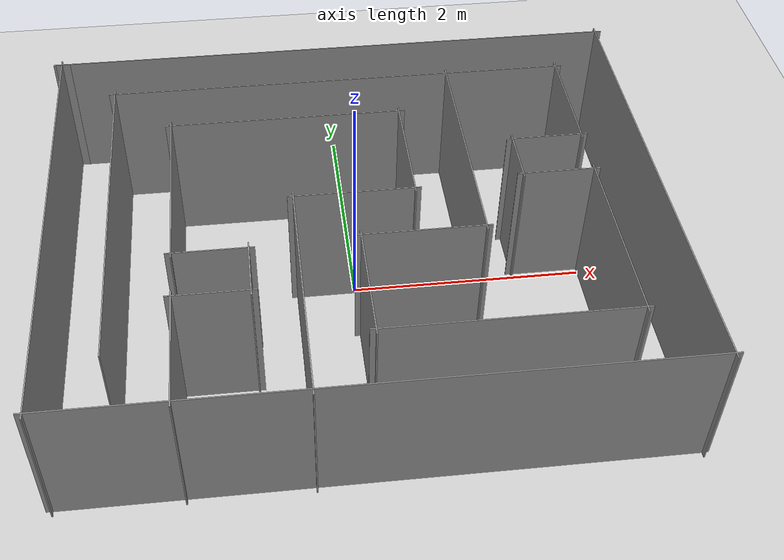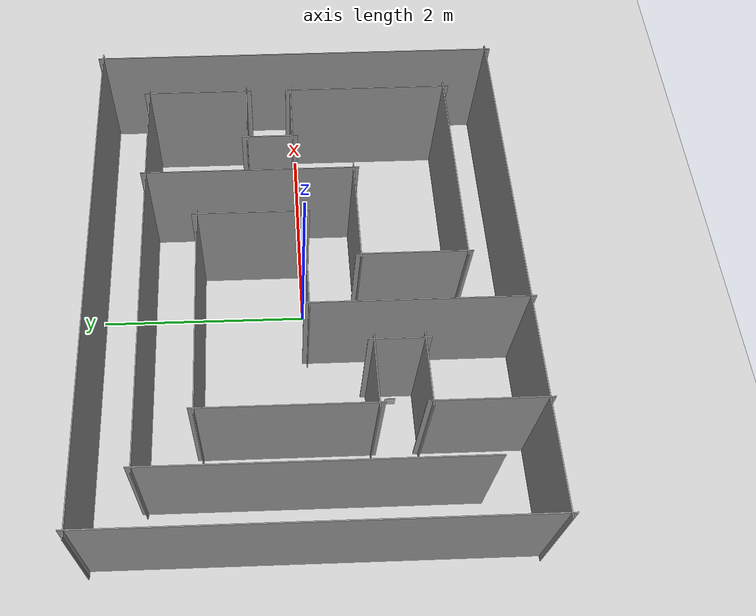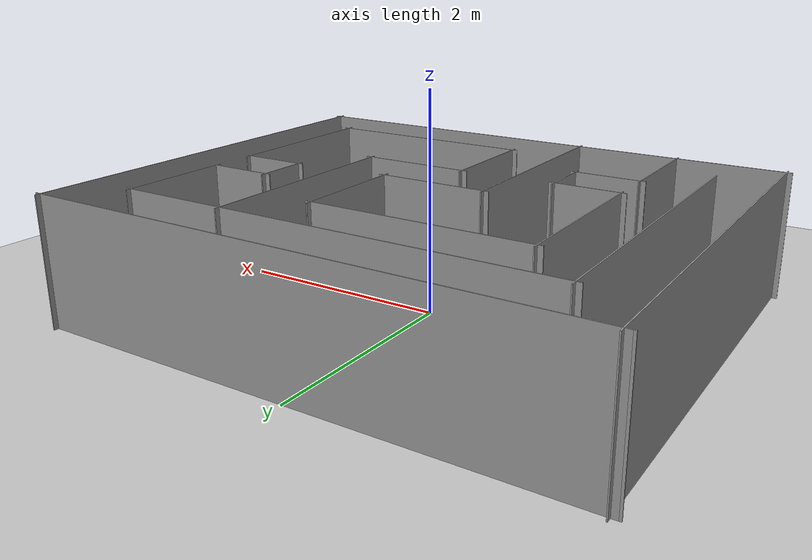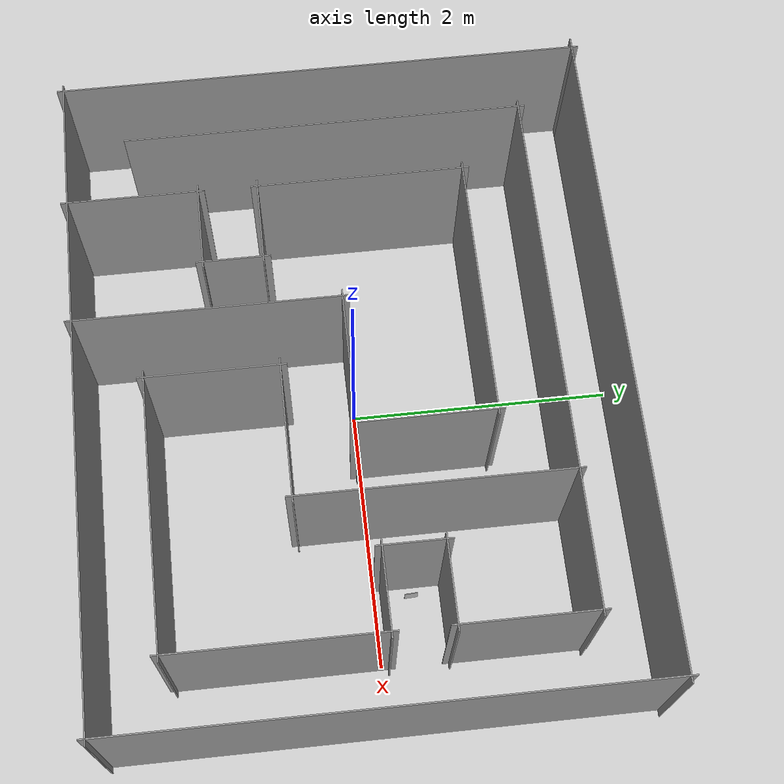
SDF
<sdf version="1.7">
 <world name="default">
  <light name="sun" type="directional">
   <pose>0 0 10 0 -0 0</pose>
   <diffuse>0.8 0.8 0.8 1</diffuse>
   <specular>0.2 0.2 0.2 1</specular>
   <attenuation>
    <range>1000</range>
    <constant>0.9</constant>
    <linear>0.01</linear>
    <quadratic>0.001</quadratic>
   </attenuation>
   <direction>-0.5 0.1 -0.9</direction>
   <spot><inner_angle>0</inner_angle><outer_angle>0</outer_angle><falloff>0</falloff></spot>
  </light>
  <model name="ground_plane">
   <static>1</static>
   <link name="link">
    <collision name="collision">
     <geometry><plane><normal>0 0 1</normal><size>100 100</size></plane></geometry>
     <surface>
      <contact><collide_bitmask>65535</collide_bitmask></contact>
      <friction><ode><mu>100</mu><mu2>50</mu2></ode></friction>
     </surface>
    </collision>
    <visual name="visual">
     <cast_shadows>0</cast_shadows>
     <geometry><plane><normal>0 0 1</normal><size>100 100</size></plane></geometry>
     <material>
      <script><uri>file://media/materials/scripts/gazebo.material</uri><name>Gazebo/Grey</name></script>
     </material>
    </visual>
   </link>
  </model>
  <gravity>0 0 -9.8</gravity>
  <magnetic_field>6e-06 2.3e-05 -4.2e-05</magnetic_field>
  <atmosphere type="adiabatic"/>
  <physics type="ode">
   <max_step_size>0.001</max_step_size>
   <real_time_factor>1</real_time_factor>
   <real_time_update_rate>1000</real_time_update_rate>
  </physics>
  <scene><ambient>0.4 0.4 0.4 1</ambient><background>0.7 0.7 0.7 1</background><shadows>1</shadows></scene>
  <spherical_coordinates>
   <surface_model>EARTH_WGS84</surface_model>
   <latitude_deg>0</latitude_deg>
   <longitude_deg>0</longitude_deg>
   <elevation>0</elevation>
   <heading_deg>0</heading_deg>
  </spherical_coordinates>
  <model name="competition_arena.world">
   <static>1</static>
   <link name="Wall_0">
    <collision name="Wall_0_Collision">
     <geometry><box><size>5.11 0.01 1.2</size></box></geometry>
     <pose>0 0 0.6 0 -0 0</pose>
    </collision>
    <visual name="Wall_0_Visual">
     <pose>0 0 0.6 0 -0 0</pose>
     <geometry><box><size>5.11 0.01 1.2</size></box></geometry>
     <material>
      <script><uri>file://media/materials/scripts/gazebo.material</uri><name>Gazebo/Grey</name></script>
      <ambient>1 1 1 1</ambient>
     </material>
     <meta><layer>0</layer></meta>
    </visual>
    <pose>0.01 1.9875 0 0 -0 0</pose>
   </link>
   <link name="Wall_13">
    <collision name="Wall_13_Collision">
     <geometry><box><size>1.085 0.01 1.2</size></box></geometry>
     <pose>0 0 0.6 0 -0 0</pose>
    </collision>
    <visual name="Wall_13_Visual">
     <pose>0 0 0.6 0 -0 0</pose>
     <geometry><box><size>1.085 0.01 1.2</size></box></geometry>
     <material>
      <script><uri>file://media/materials/scripts/gazebo.material</uri><name>Gazebo/Grey</name></script>
      <ambient>1 1 1 1</ambient>
     </material>
     <meta><layer>0</layer></meta>
    </visual>
    <pose>-1.49 -1.52 0 0 -0 1.5708</pose>
   </link>
   <link name="Wall_25">
    <collision name="Wall_25_Collision">
     <geometry><box><size>0.7 0.01 1.2</size></box></geometry>
     <pose>0 0 0.6 0 -0 0</pose>
    </collision>
    <visual name="Wall_25_Visual">
     <pose>0 0 0.6 0 -0 0</pose>
     <geometry><box><size>0.7 0.01 1.2</size></box></geometry>
     <material>
      <script><uri>file://media/materials/scripts/gazebo.material</uri><name>Gazebo/Grey</name></script>
      <ambient>1 1 1 1</ambient>
     </material>
     <meta><layer>0</layer></meta>
    </visual>
    <pose>-1.19 -1.0275 0 0 -0 0</pose>
   </link>
   <link name="Wall_27">
    <collision name="Wall_27_Collision">
     <geometry><box><size>3.1 0.01 1.2</size></box></geometry>
     <pose>0 0 0.6 0 -0 0</pose>
    </collision>
    <visual name="Wall_27_Visual">
     <pose>0 0 0.6 0 -0 0</pose>
     <geometry><box><size>3.1 0.01 1.2</size></box></geometry>
     <material>
      <script><uri>file://media/materials/scripts/gazebo.material</uri><name>Gazebo/Grey</name></script>
      <ambient>1 1 1 1</ambient>
     </material>
     <meta><layer>0</layer></meta>
    </visual>
    <pose>-1.99 -0.0125 0 0 -0 1.5708</pose>
   </link>
   <link name="Wall_29">
    <collision name="Wall_29_Collision">
     <geometry><box><size>0.56 0.01 1.2</size></box></geometry>
     <pose>0 0 0.6 0 -0 0</pose>
    </collision>
    <visual name="Wall_29_Visual">
     <pose>0 0 0.6 0 -0 0</pose>
     <geometry><box><size>0.56 0.01 1.2</size></box></geometry>
     <material>
      <script><uri>file://media/materials/scripts/gazebo.material</uri><name>Gazebo/Grey</name></script>
      <ambient>1 1 1 1</ambient>
     </material>
     <meta><layer>0</layer></meta>
    </visual>
    <pose>-0.89 -0.8025 0 0 -0 1.5708</pose>
   </link>
   <link name="Wall_3">
    <collision name="Wall_3_Collision">
     <geometry><box><size>4.1 0.01 1.2</size></box></geometry>
     <pose>0 0 0.6 0 -0 0</pose>
    </collision>
    <visual name="Wall_3_Visual">
     <pose>0 0 0.6 0 -0 0</pose>
     <geometry><box><size>4.1 0.01 1.2</size></box></geometry>
     <material>
      <script><uri>file://media/materials/scripts/gazebo.material</uri><name>Gazebo/Grey</name></script>
      <ambient>1 1 1 1</ambient>
     </material>
     <meta><layer>0</layer></meta>
    </visual>
    <pose>-2.49 -0.0125 0 0 -0 1.5708</pose>
   </link>
   <link name="Wall_30">
    <collision name="Wall_30_Collision">
     <geometry><box><size>0.7 0.01 1.2</size></box></geometry>
     <pose>0 0 0.6 0 -0 0</pose>
    </collision>
    <visual name="Wall_30_Visual">
     <pose>0 0 0.6 0 -0 0</pose>
     <geometry><box><size>0.7 0.01 1.2</size></box></geometry>
     <material>
      <script><uri>file://media/materials/scripts/gazebo.material</uri><name>Gazebo/Grey</name></script>
      <ambient>1 1 1 1</ambient>
     </material>
     <meta><layer>0</layer></meta>
    </visual>
    <pose>-1.19 -0.5775 0 0 -0 3.14159</pose>
   </link>
   <link name="Wall_31">
    <collision name="Wall_31_Collision">
     <geometry><box><size>1.665 0.01 1.2</size></box></geometry>
     <pose>0 0 0.6 0 -0 0</pose>
    </collision>
    <visual name="Wall_31_Visual">
     <pose>0 0 0.6 0 -0 0</pose>
     <geometry><box><size>1.665 0.01 1.2</size></box></geometry>
     <material>
      <script><uri>file://media/materials/scripts/gazebo.material</uri><name>Gazebo/Grey</name></script>
      <ambient>1 1 1 1</ambient>
     </material>
     <meta><layer>0</layer></meta>
    </visual>
    <pose>-1.49 0.205 0 0 -0 1.5708</pose>
   </link>
   <link name="Wall_32">
    <collision name="Wall_32_Collision">
     <geometry><box><size>2.085 0.01 1.2</size></box></geometry>
     <pose>0 0 0.6 0 -0 0</pose>
    </collision>
    <visual name="Wall_32_Visual">
     <pose>0 0 0.6 0 -0 0</pose>
     <geometry><box><size>2.085 0.01 1.2</size></box></geometry>
     <material>
      <script><uri>file://media/materials/scripts/gazebo.material</uri><name>Gazebo/Grey</name></script>
      <ambient>1 1 1 1</ambient>
     </material>
     <meta><layer>0</layer></meta>
    </visual>
    <pose>-0.4975 0.9875 0 0 -0 0</pose>
   </link>
   <link name="Wall_33">
    <collision name="Wall_33_Collision">
     <geometry><box><size>1.115 0.01 1.2</size></box></geometry>
     <pose>0 0 0.6 0 -0 0</pose>
    </collision>
    <visual name="Wall_33_Visual">
     <pose>0 0 0.6 0 -0 0</pose>
     <geometry><box><size>1.115 0.01 1.2</size></box></geometry>
     <material>
      <script><uri>file://media/materials/scripts/gazebo.material</uri><name>Gazebo/Grey</name></script>
      <ambient>1 1 1 1</ambient>
     </material>
     <meta><layer>0</layer></meta>
    </visual>
    <pose>0.495 0.48 0 0 -0 -1.5708</pose>
   </link>
   <link name="Wall_34">
    <collision name="Wall_34_Collision">
     <geometry><box><size>1.1 0.01 1.2</size></box></geometry>
     <pose>0 0 0.6 0 -0 0</pose>
    </collision>
    <visual name="Wall_34_Visual">
     <pose>0 0 0.6 0 -0 0</pose>
     <geometry><box><size>1.1 0.01 1.2</size></box></geometry>
     <material>
      <script><uri>file://media/materials/scripts/gazebo.material</uri><name>Gazebo/Grey</name></script>
      <ambient>1 1 1 1</ambient>
     </material>
     <meta><layer>0</layer></meta>
    </visual>
    <pose>-0.005 -0.0275 0 0 -0 3.14159</pose>
   </link>
   <link name="Wall_35">
    <collision name="Wall_35_Collision">
     <geometry><box><size>2.085 0.01 1.2</size></box></geometry>
     <pose>0 0 0.6 0 -0 0</pose>
    </collision>
    <visual name="Wall_35_Visual">
     <pose>0 0 0.6 0 -0 0</pose>
     <geometry><box><size>2.085 0.01 1.2</size></box></geometry>
     <material>
      <script><uri>file://media/materials/scripts/gazebo.material</uri><name>Gazebo/Grey</name></script>
      <ambient>1 1 1 1</ambient>
     </material>
     <meta><layer>0</layer></meta>
    </visual>
    <pose>-0.505 -1.02 0 0 -0 -1.5708</pose>
   </link>
   <link name="Wall_37">
    <collision name="Wall_37_Collision">
     <geometry><box><size>4.1 0.01 1.2</size></box></geometry>
     <pose>0 0 0.6 0 -0 0</pose>
    </collision>
    <visual name="Wall_37_Visual">
     <pose>0 0 0.6 0 -0 0</pose>
     <geometry><box><size>4.1 0.01 1.2</size></box></geometry>
     <material>
      <script><uri>file://media/materials/scripts/gazebo.material</uri><name>Gazebo/Grey</name></script>
      <ambient>1 1 1 1</ambient>
     </material>
     <meta><layer>0</layer></meta>
    </visual>
    <pose>0.01 1.4875 0 0 -0 0</pose>
   </link>
   <link name="Wall_39">
    <collision name="Wall_39_Collision">
     <geometry><box><size>2.115 0.01 1.2</size></box></geometry>
     <pose>0 0 0.6 0 -0 0</pose>
    </collision>
    <visual name="Wall_39_Visual">
     <pose>0 0 0.6 0 -0 0</pose>
     <geometry><box><size>2.115 0.01 1.2</size></box></geometry>
     <material>
      <script><uri>file://media/materials/scripts/gazebo.material</uri><name>Gazebo/Grey</name></script>
      <ambient>1 1 1 1</ambient>
     </material>
     <meta><layer>0</layer></meta>
    </visual>
    <pose>0.995 0.48 0 0 -0 -1.5708</pose>
   </link>
   <link name="Wall_4">
    <collision name="Wall_4_Collision">
     <geometry><box><size>0.15 0.01 1.2</size></box></geometry>
     <pose>0 0 0.6 0 -0 0</pose>
    </collision>
    <visual name="Wall_4_Visual">
     <pose>0 0 0.6 0 -0 0</pose>
     <geometry><box><size>0.15 0.01 1.2</size></box></geometry>
     <material>
      <script><uri>file://media/materials/scripts/gazebo.material</uri><name>Gazebo/Grey</name></script>
      <ambient>1 1 1 1</ambient>
     </material>
     <meta><layer>0</layer></meta>
    </visual>
    <pose>-2.49 1.9875 0 0 -0 0</pose>
   </link>
   <link name="Wall_40">
    <collision name="Wall_40_Collision">
     <geometry><box><size>1.1 0.01 1.2</size></box></geometry>
     <pose>0 0 0.6 0 -0 0</pose>
    </collision>
    <visual name="Wall_40_Visual">
     <pose>0 0 0.6 0 -0 0</pose>
     <geometry><box><size>1.1 0.01 1.2</size></box></geometry>
     <material>
      <script><uri>file://media/materials/scripts/gazebo.material</uri><name>Gazebo/Grey</name></script>
      <ambient>1 1 1 1</ambient>
     </material>
     <meta><layer>0</layer></meta>
    </visual>
    <pose>0.495 -0.5275 0 0 -0 3.14159</pose>
   </link>
   <link name="Wall_41">
    <collision name="Wall_41_Collision">
     <geometry><box><size>1.085 0.01 1.2</size></box></geometry>
     <pose>0 0 0.6 0 -0 0</pose>
    </collision>
    <visual name="Wall_41_Visual">
     <pose>0 0 0.6 0 -0 0</pose>
     <geometry><box><size>1.085 0.01 1.2</size></box></geometry>
     <material>
      <script><uri>file://media/materials/scripts/gazebo.material</uri><name>Gazebo/Grey</name></script>
      <ambient>1 1 1 1</ambient>
     </material>
     <meta><layer>0</layer></meta>
    </visual>
    <pose>-0.005 -1.02 0 0 -0 -1.5708</pose>
   </link>
   <link name="Wall_43">
    <collision name="Wall_43_Collision">
     <geometry><box><size>2.115 0.01 1.2</size></box></geometry>
     <pose>0 0 0.6 0 -0 0</pose>
    </collision>
    <visual name="Wall_43_Visual">
     <pose>0 0 0.6 0 -0 0</pose>
     <geometry><box><size>2.115 0.01 1.2</size></box></geometry>
     <material>
      <script><uri>file://media/materials/scripts/gazebo.material</uri><name>Gazebo/Grey</name></script>
      <ambient>1 1 1 1</ambient>
     </material>
     <meta><layer>0</layer></meta>
    </visual>
    <pose>1.0025 -1.5125 0 0 -0 0</pose>
   </link>
   <link name="Wall_44">
    <collision name="Wall_44_Collision">
     <geometry><box><size>1.665 0.01 1.2</size></box></geometry>
     <pose>0 0 0.6 0 -0 0</pose>
    </collision>
    <visual name="Wall_44_Visual">
     <pose>0 0 0.6 0 -0 0</pose>
     <geometry><box><size>1.665 0.01 1.2</size></box></geometry>
     <material>
      <script><uri>file://media/materials/scripts/gazebo.material</uri><name>Gazebo/Grey</name></script>
      <ambient>1 1 1 1</ambient>
     </material>
     <meta><layer>0</layer></meta>
    </visual>
    <pose>2.01 -0.73 0 0 -0 1.5708</pose>
   </link>
   <link name="Wall_45">
    <collision name="Wall_45_Collision">
     <geometry><box><size>0.7 0.01 1.2</size></box></geometry>
     <pose>0 0 0.6 0 -0 0</pose>
    </collision>
    <visual name="Wall_45_Visual">
     <pose>0 0 0.6 0 -0 0</pose>
     <geometry><box><size>0.7 0.01 1.2</size></box></geometry>
     <material>
      <script><uri>file://media/materials/scripts/gazebo.material</uri><name>Gazebo/Grey</name></script>
      <ambient>1 1 1 1</ambient>
     </material>
     <meta><layer>0</layer></meta>
    </visual>
    <pose>1.71 0.0525 0 0 -0 3.14159</pose>
   </link>
   <link name="Wall_50">
    <collision name="Wall_50_Collision">
     <geometry><box><size>0.55 0.01 1.2</size></box></geometry>
     <pose>0 0 0.6 0 -0 0</pose>
    </collision>
    <visual name="Wall_50_Visual">
     <pose>0 0 0.6 0 -0 0</pose>
     <geometry><box><size>0.55 0.01 1.2</size></box></geometry>
     <material>
      <script><uri>file://media/materials/scripts/gazebo.material</uri><name>Gazebo/Grey</name></script>
      <ambient>1 1 1 1</ambient>
     </material>
     <meta><layer>0</layer></meta>
    </visual>
    <pose>1.41 0.2775 0 0 -0 1.5708</pose>
   </link>
   <link name="Wall_51">
    <collision name="Wall_51_Collision">
     <geometry><box><size>0.7 0.01 1.2</size></box></geometry>
     <pose>0 0 0.6 0 -0 0</pose>
    </collision>
    <visual name="Wall_51_Visual">
     <pose>0 0 0.6 0 -0 0</pose>
     <geometry><box><size>0.7 0.01 1.2</size></box></geometry>
     <material>
      <script><uri>file://media/materials/scripts/gazebo.material</uri><name>Gazebo/Grey</name></script>
      <ambient>1 1 1 1</ambient>
     </material>
     <meta><layer>0</layer></meta>
    </visual>
    <pose>1.71 0.5025 0 0 -0 0</pose>
   </link>
   <link name="Wall_52">
    <collision name="Wall_52_Collision">
     <geometry><box><size>1.085 0.01 1.2</size></box></geometry>
     <pose>0 0 0.6 0 -0 0</pose>
    </collision>
    <visual name="Wall_52_Visual">
     <pose>0 0 0.6 0 -0 0</pose>
     <geometry><box><size>1.085 0.01 1.2</size></box></geometry>
     <material>
      <script><uri>file://media/materials/scripts/gazebo.material</uri><name>Gazebo/Grey</name></script>
      <ambient>1 1 1 1</ambient>
     </material>
     <meta><layer>0</layer></meta>
    </visual>
    <pose>2.01 0.995 0 0 -0 1.5708</pose>
   </link>
   <link name="Wall_6">
    <collision name="Wall_6_Collision">
     <geometry><box><size>5.1 0.01 1.2</size></box></geometry>
     <pose>0 0 0.6 0 -0 0</pose>
    </collision>
    <visual name="Wall_6_Visual">
     <pose>0 0 0.6 0 -0 0</pose>
     <geometry><box><size>5.1 0.01 1.2</size></box></geometry>
     <material>
      <script><uri>file://media/materials/scripts/gazebo.material</uri><name>Gazebo/Grey</name></script>
      <ambient>1 1 1 1</ambient>
     </material>
     <meta><layer>0</layer></meta>
    </visual>
    <pose>0.01 -2.0125 0 0 -0 0</pose>
   </link>
   <link name="Wall_7">
    <collision name="Wall_7_Collision">
     <geometry><box><size>4.1 0.01 1.2</size></box></geometry>
     <pose>0 0 0.6 0 -0 0</pose>
    </collision>
    <visual name="Wall_7_Visual">
     <pose>0 0 0.6 0 -0 0</pose>
     <geometry><box><size>4.1 0.01 1.2</size></box></geometry>
     <material>
      <script><uri>file://media/materials/scripts/gazebo.material</uri><name>Gazebo/Grey</name></script>
      <ambient>1 1 1 1</ambient>
     </material>
     <meta><layer>0</layer></meta>
    </visual>
    <pose>2.51 -0.0125 0 0 -0 1.5708</pose>
   </link>
  </model>
  <model name="enemy_01">
   <static>1</static>
   <pose>1.48568 0.280533 0.053044 0 -0 1.62365</pose>
   <link name="standee">
    <visual name="standee_vis">
     <geometry><box><size>0.1 0.005 0.12</size></box></geometry>
     <material>
      <script><uri>model://enemy_model/materials/scripts/enemy.material</uri><name>EnemyTex</name></script>
     </material>
    </visual>
    <collision name="standee_col"><geometry><box><size>0.1 0.005 0.12</size></box></geometry></collision>
   </link>
  </model>
  <model name="hostage_01">
   <static>1</static>
   <pose>-0.969241 -0.802289 0.048202 0.002704 -0 -1.57079</pose>
   <link name="standee">
    <visual name="standee_vis">
     <geometry><box><size>0.1 0.005 0.12</size></box></geometry>
     <material>
      <script><uri>model://hostage_model/materials/scripts/hostage.material</uri><name>HostageTex</name></script>
     </material>
    </visual>
    <collision name="standee_col"><geometry><box><size>0.1 0.005 0.12</size></box></geometry></collision>
   </link>
  </model>
 </world>
</sdf>
